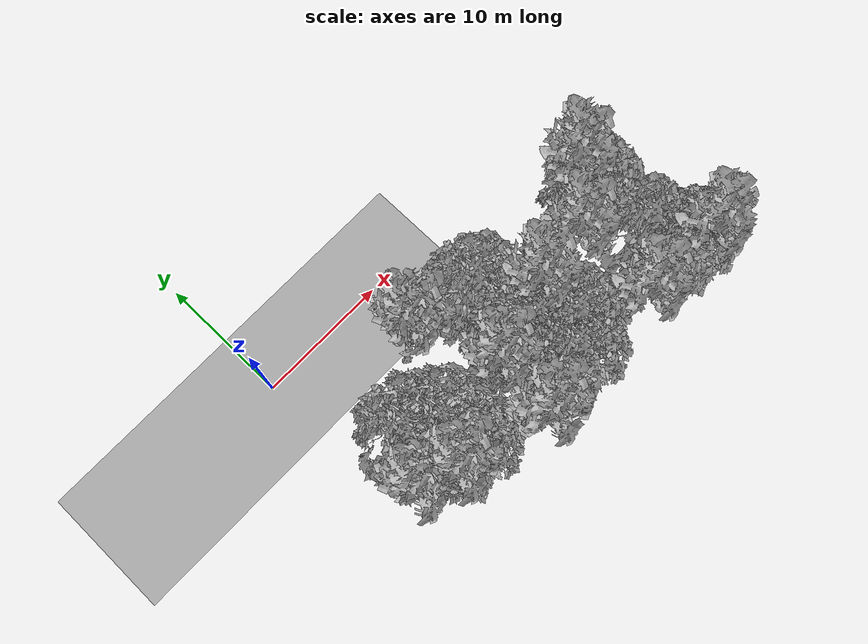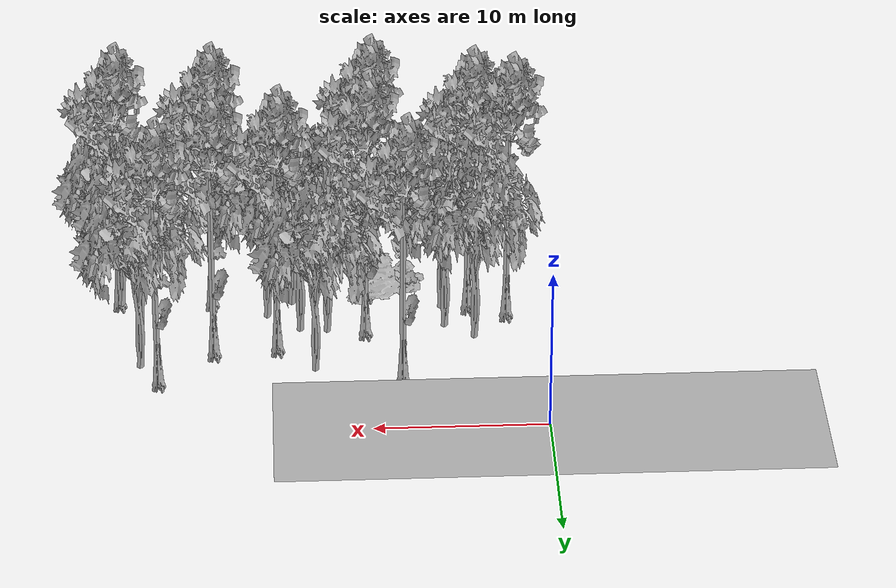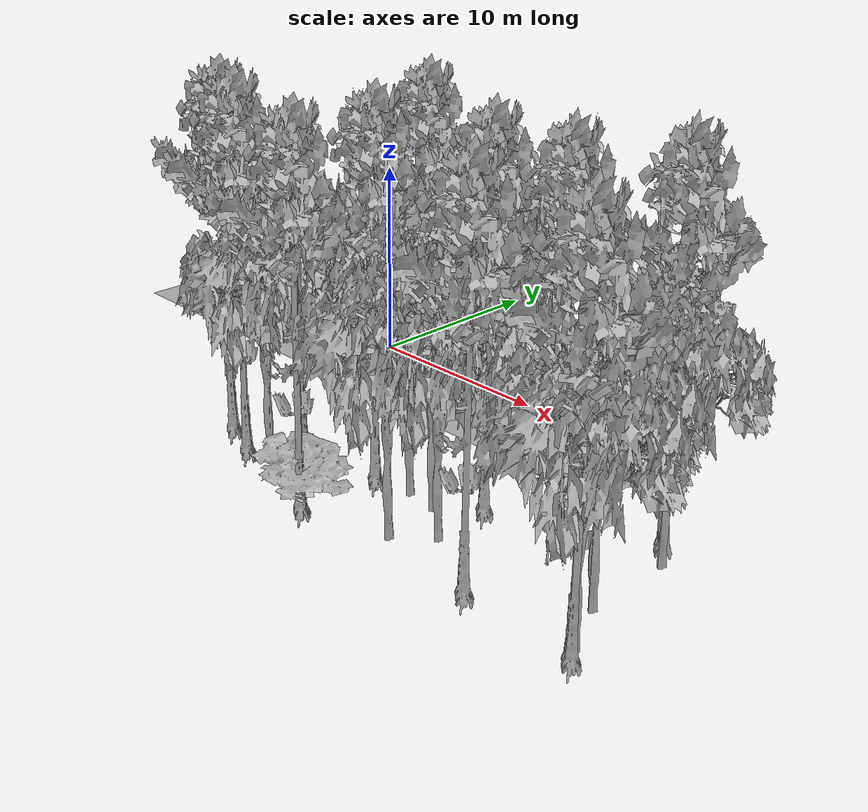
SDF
<sdf version="1.7">
 <world name="default">
  <model name="ground_plane">
   <static>1</static>
   <link name="link">
    <collision name="collision">
     <pose>-50 0 0 0 -0 0</pose>
     <geometry><plane><normal>0 0 1</normal><size>100 100</size></plane></geometry>
     <surface><contact><ode><min_depth>0.01</min_depth><max_vel>0</max_vel></ode></contact></surface>
    </collision>
    <visual name="grass">
     <cast_shadows>0</cast_shadows>
     <geometry>
      <mesh>
       <scale>0.5814285714285714 0.18142857142857144 0.1</scale>
       <uri>file://grass_plane/meshes/grass_plane.dae</uri>
      </mesh>
     </geometry>
    </visual>
   </link>
  </model>
  <model name="Tree 0">
   <static>1</static>
   <pose>9.00530453660214 -13.77287635051631 0 1.57079 -0 0</pose>
   <link name="link">
    <collision name="collision">
     <geometry><mesh><scale>3 2 3</scale><uri>model://tree_3/meshes/tree_3.obj</uri></mesh></geometry>
    </collision>
    <visual name="visual">
     <geometry><mesh><scale>3 2 3</scale><uri>model://tree_3/meshes/tree_3.obj</uri></mesh></geometry>
    </visual>
   </link>
  </model>
  <model name="Tree 28">
   <static>1</static>
   <pose>13.895029403688497 -10.439070415187125 0 1.57079 -0 0</pose>
   <link name="link">
    <collision name="collision">
     <geometry><mesh><scale>3.5 5 3.5</scale><uri>model://tree_2/meshes/tree_2.obj</uri></mesh></geometry>
    </collision>
    <visual name="visual">
     <geometry><mesh><scale>3.5 5 3.5</scale><uri>model://tree_2/meshes/tree_2.obj</uri></mesh></geometry>
    </visual>
   </link>
  </model>
  <model name="Tree 35">
   <static>1</static>
   <pose>23.251892534134925 -11.243501988978359 0 1.57079 -0 0</pose>
   <link name="link">
    <collision name="collision">
     <geometry><mesh><scale>3.5 5 3.5</scale><uri>model://tree_2/meshes/tree_2.obj</uri></mesh></geometry>
    </collision>
    <visual name="visual">
     <geometry><mesh><scale>3.5 5 3.5</scale><uri>model://tree_2/meshes/tree_2.obj</uri></mesh></geometry>
    </visual>
   </link>
  </model>
  <model name="Tree 44">
   <static>1</static>
   <pose>5.558422861950639 -12.568565349459579 0 1.57079 -0 0</pose>
   <link name="link">
    <collision name="collision">
     <geometry><mesh><scale>3.5 5 3.5</scale><uri>model://tree_2/meshes/tree_2.obj</uri></mesh></geometry>
    </collision>
    <visual name="visual">
     <geometry><mesh><scale>3.5 5 3.5</scale><uri>model://tree_2/meshes/tree_2.obj</uri></mesh></geometry>
    </visual>
   </link>
  </model>
  <model name="Tree 45">
   <static>1</static>
   <pose>9.966604630992663 -14.307115635613112 0 1.57079 -0 0</pose>
   <link name="link">
    <collision name="collision">
     <geometry><mesh><scale>3.5 5 3.5</scale><uri>model://tree_9/meshes/tree_9.obj</uri></mesh></geometry>
    </collision>
    <visual name="visual">
     <geometry><mesh><scale>3.5 5 3.5</scale><uri>model://tree_9/meshes/tree_9.obj</uri></mesh></geometry>
    </visual>
   </link>
  </model>
  <model name="Tree 49">
   <static>1</static>
   <pose>15.803428764384378 -11.965720311355893 0 1.57079 -0 0</pose>
   <link name="link">
    <collision name="collision">
     <geometry><mesh><scale>3.5 5 3.5</scale><uri>model://tree_2/meshes/tree_2.obj</uri></mesh></geometry>
    </collision>
    <visual name="visual">
     <geometry><mesh><scale>3.5 5 3.5</scale><uri>model://tree_2/meshes/tree_2.obj</uri></mesh></geometry>
    </visual>
   </link>
  </model>
  <model name="Tree 63">
   <static>1</static>
   <pose>8.158630580729636 -5.236032465367847 0 1.57079 -0 0</pose>
   <link name="link">
    <collision name="collision">
     <geometry><mesh><scale>3.5 5 3.5</scale><uri>model://tree_9/meshes/tree_9.obj</uri></mesh></geometry>
    </collision>
    <visual name="visual">
     <geometry><mesh><scale>3.5 5 3.5</scale><uri>model://tree_9/meshes/tree_9.obj</uri></mesh></geometry>
    </visual>
   </link>
  </model>
  <model name="Tree 77">
   <static>1</static>
   <pose>23.184635379710713 -6.957353245999451 0 1.57079 -0 0</pose>
   <link name="link">
    <collision name="collision">
     <geometry><mesh><scale>3.5 5 3.5</scale><uri>model://tree_2/meshes/tree_2.obj</uri></mesh></geometry>
    </collision>
    <visual name="visual">
     <geometry><mesh><scale>3.5 5 3.5</scale><uri>model://tree_2/meshes/tree_2.obj</uri></mesh></geometry>
    </visual>
   </link>
  </model>
  <model name="Tree 93">
   <static>1</static>
   <pose>3.7389978285290795 -9.284405723036478 0 1.57079 -0 0</pose>
   <link name="link">
    <collision name="collision">
     <geometry><mesh><scale>3.5 5 3.5</scale><uri>model://tree_2/meshes/tree_2.obj</uri></mesh></geometry>
    </collision>
    <visual name="visual">
     <geometry><mesh><scale>3.5 5 3.5</scale><uri>model://tree_2/meshes/tree_2.obj</uri></mesh></geometry>
    </visual>
   </link>
  </model>
  <model name="Tree 94">
   <static>1</static>
   <pose>22.23709751905234 -5.436631557411502 0 1.57079 -0 0</pose>
   <link name="link">
    <collision name="collision">
     <geometry><mesh><scale>3.5 5 3.5</scale><uri>model://tree_9/meshes/tree_9.obj</uri></mesh></geometry>
    </collision>
    <visual name="visual">
     <geometry><mesh><scale>3.5 5 3.5</scale><uri>model://tree_9/meshes/tree_9.obj</uri></mesh></geometry>
    </visual>
   </link>
  </model>
  <model name="Tree 101">
   <static>1</static>
   <pose>1.8316504672661722 -11.869803146444449 0 1.57079 -0 0</pose>
   <link name="link">
    <collision name="collision">
     <geometry><mesh><scale>3.5 5 3.5</scale><uri>model://tree_9/meshes/tree_9.obj</uri></mesh></geometry>
    </collision>
    <visual name="visual">
     <geometry><mesh><scale>3.5 5 3.5</scale><uri>model://tree_9/meshes/tree_9.obj</uri></mesh></geometry>
    </visual>
   </link>
  </model>
  <model name="Tree 106">
   <static>1</static>
   <pose>12.314988563485194 -10.251844650988515 0 1.57079 -0 0</pose>
   <link name="link">
    <collision name="collision">
     <geometry><mesh><scale>3.5 5 3.5</scale><uri>model://tree_2/meshes/tree_2.obj</uri></mesh></geometry>
    </collision>
    <visual name="visual">
     <geometry><mesh><scale>3.5 5 3.5</scale><uri>model://tree_2/meshes/tree_2.obj</uri></mesh></geometry>
    </visual>
   </link>
  </model>
  <model name="Tree 112">
   <static>1</static>
   <pose>15.346055614041347 -8.703196890136075 0 1.57079 -0 0</pose>
   <link name="link">
    <collision name="collision">
     <geometry><mesh><scale>3.5 5 3.5</scale><uri>model://tree_9/meshes/tree_9.obj</uri></mesh></geometry>
    </collision>
    <visual name="visual">
     <geometry><mesh><scale>3.5 5 3.5</scale><uri>model://tree_9/meshes/tree_9.obj</uri></mesh></geometry>
    </visual>
   </link>
  </model>
  <model name="Tree 126">
   <static>1</static>
   <pose>14.342242494398462 -13.339429643304188 0 1.57079 -0 0</pose>
   <link name="link">
    <collision name="collision">
     <geometry><mesh><scale>3.5 5 3.5</scale><uri>model://tree_2/meshes/tree_2.obj</uri></mesh></geometry>
    </collision>
    <visual name="visual">
     <geometry><mesh><scale>3.5 5 3.5</scale><uri>model://tree_2/meshes/tree_2.obj</uri></mesh></geometry>
    </visual>
   </link>
  </model>
  <model name="Tree 131">
   <static>1</static>
   <pose>19.16307291375223 -13.790546568963983 0 1.57079 -0 0</pose>
   <link name="link">
    <collision name="collision">
     <geometry><mesh><scale>3.5 5 3.5</scale><uri>model://tree_9/meshes/tree_9.obj</uri></mesh></geometry>
    </collision>
    <visual name="visual">
     <geometry><mesh><scale>3.5 5 3.5</scale><uri>model://tree_9/meshes/tree_9.obj</uri></mesh></geometry>
    </visual>
   </link>
  </model>
  <model name="Tree 132">
   <static>1</static>
   <pose>24.647958266702588 -13.970138683326047 0 1.57079 -0 0</pose>
   <link name="link">
    <collision name="collision">
     <geometry><mesh><scale>3.5 5 3.5</scale><uri>model://tree_9/meshes/tree_9.obj</uri></mesh></geometry>
    </collision>
    <visual name="visual">
     <geometry><mesh><scale>3.5 5 3.5</scale><uri>model://tree_9/meshes/tree_9.obj</uri></mesh></geometry>
    </visual>
   </link>
  </model>
  <model name="Tree 142">
   <static>1</static>
   <pose>19.038121979908226 -8.394229147793816 0 1.57079 -0 0</pose>
   <link name="link">
    <collision name="collision">
     <geometry><mesh><scale>3.5 5 3.5</scale><uri>model://tree_9/meshes/tree_9.obj</uri></mesh></geometry>
    </collision>
    <visual name="visual">
     <geometry><mesh><scale>3.5 5 3.5</scale><uri>model://tree_9/meshes/tree_9.obj</uri></mesh></geometry>
    </visual>
   </link>
  </model>
  <model name="Tree 149">
   <static>1</static>
   <pose>13.079715361457524 -6.207958009264834 0 1.57079 -0 0</pose>
   <link name="link">
    <collision name="collision">
     <geometry><mesh><scale>3.5 5 3.5</scale><uri>model://tree_2/meshes/tree_2.obj</uri></mesh></geometry>
    </collision>
    <visual name="visual">
     <geometry><mesh><scale>3.5 5 3.5</scale><uri>model://tree_2/meshes/tree_2.obj</uri></mesh></geometry>
    </visual>
   </link>
  </model>
  <model name="Tree 159">
   <static>1</static>
   <pose>24.416795238778505 -13.63400222679828 0 1.57079 -0 0</pose>
   <link name="link">
    <collision name="collision">
     <geometry><mesh><scale>3.5 5 3.5</scale><uri>model://tree_2/meshes/tree_2.obj</uri></mesh></geometry>
    </collision>
    <visual name="visual">
     <geometry><mesh><scale>3.5 5 3.5</scale><uri>model://tree_2/meshes/tree_2.obj</uri></mesh></geometry>
    </visual>
   </link>
  </model>
  <model name="Tree 160">
   <static>1</static>
   <pose>5.435192657032161 -10.531453295065143 0 1.57079 -0 0</pose>
   <link name="link">
    <collision name="collision">
     <geometry><mesh><scale>3.5 5 3.5</scale><uri>model://tree_2/meshes/tree_2.obj</uri></mesh></geometry>
    </collision>
    <visual name="visual">
     <geometry><mesh><scale>3.5 5 3.5</scale><uri>model://tree_2/meshes/tree_2.obj</uri></mesh></geometry>
    </visual>
   </link>
  </model>
  <model name="Tree 161">
   <static>1</static>
   <pose>4.074935241972874 -12.73282474613842 0 1.57079 -0 0</pose>
   <link name="link">
    <collision name="collision">
     <geometry><mesh><scale>3.5 5 3.5</scale><uri>model://tree_9/meshes/tree_9.obj</uri></mesh></geometry>
    </collision>
    <visual name="visual">
     <geometry><mesh><scale>3.5 5 3.5</scale><uri>model://tree_9/meshes/tree_9.obj</uri></mesh></geometry>
    </visual>
   </link>
  </model>
  <model name="Tree 172">
   <static>1</static>
   <pose>10.179733791697643 -10.247045880709635 0 1.57079 -0 0</pose>
   <link name="link">
    <collision name="collision">
     <geometry><mesh><scale>3.5 5 3.5</scale><uri>model://tree_9/meshes/tree_9.obj</uri></mesh></geometry>
    </collision>
    <visual name="visual">
     <geometry><mesh><scale>3.5 5 3.5</scale><uri>model://tree_9/meshes/tree_9.obj</uri></mesh></geometry>
    </visual>
   </link>
  </model>
 </world>
</sdf>
